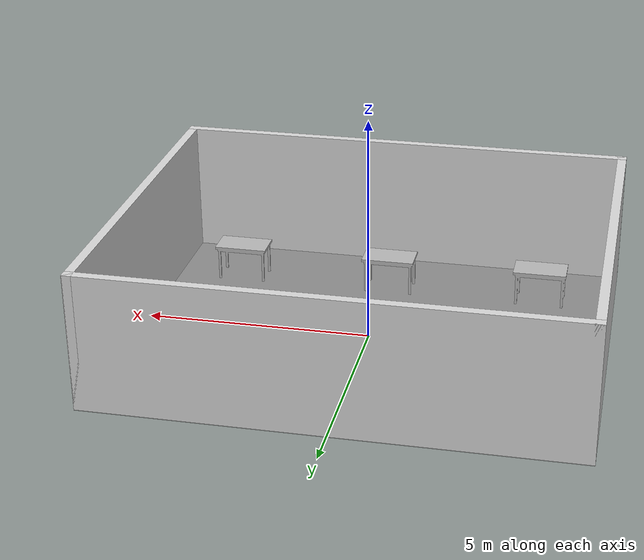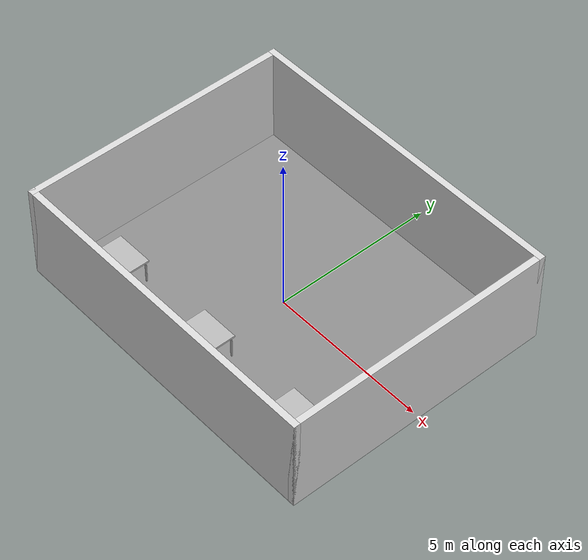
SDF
<sdf version="1.11">
 <world name="bag_sorting_single">
  <physics name="4ms" type="Bullet">
   <max_step_size>0.004</max_step_size>
   <real_time_factor>1.0</real_time_factor>
   <real_time_update_rate>250</real_time_update_rate>
  </physics>
  <plugin filename="gz-sim-physics-system" name="gz::sim::systems::Physics"/>
  <plugin filename="gz-sim-user-commands-system" name="gz::sim::systems::UserCommands"/>
  <plugin filename="gz-sim-scene-broadcaster-system" name="gz::sim::systems::SceneBroadcaster"/>
  <plugin filename="gz-sim-contact-system" name="gz::sim::systems::Contact"/>
  <plugin filename="gz-sim-imu-system" name="gz::sim::systems::Imu"/>
  <plugin filename="gz-sim-sensors-system" name="gz::sim::systems::Sensors">
   <render_engine>ogre2</render_engine>
  </plugin>
  <model name="floor">
   <static>true</static>
   <link name="link">
    <collision name="collision"><geometry><plane><normal>0 0 1</normal></plane></geometry></collision>
    <visual name="visual">
     <geometry><plane><normal>0 0 1</normal><size>10.4 8.4</size></plane></geometry>
     <material>
      <ambient>0.55 0.55 0.55 1</ambient>
      <diffuse>0.55 0.55 0.55 1</diffuse>
      <specular>0.1 0.1 0.1 1</specular>
     </material>
    </visual>
   </link>
  </model>
  <model name="wall_north">
   <static>true</static>
   <pose>0 4.1 1.5 0 0 0</pose>
   <link name="link">
    <collision name="collision"><geometry><box><size>10.4 0.2 3.0</size></box></geometry></collision>
    <visual name="visual">
     <geometry><box><size>10.4 0.2 3.0</size></box></geometry>
     <material><ambient>0.85 0.85 0.85 1</ambient><diffuse>0.85 0.85 0.85 1</diffuse></material>
    </visual>
   </link>
  </model>
  <model name="wall_south">
   <static>true</static>
   <pose>0 -4.1 1.5 0 0 0</pose>
   <link name="link">
    <collision name="collision"><geometry><box><size>10.4 0.2 3.0</size></box></geometry></collision>
    <visual name="visual">
     <geometry><box><size>10.4 0.2 3.0</size></box></geometry>
     <material><ambient>0.85 0.85 0.85 1</ambient><diffuse>0.85 0.85 0.85 1</diffuse></material>
    </visual>
   </link>
  </model>
  <model name="wall_east">
   <static>true</static>
   <pose>5.1 0 1.5 0 0 0</pose>
   <link name="link">
    <collision name="collision"><geometry><box><size>0.2 8.4 3.0</size></box></geometry></collision>
    <visual name="visual">
     <geometry><box><size>0.2 8.4 3.0</size></box></geometry>
     <material><ambient>0.85 0.85 0.85 1</ambient><diffuse>0.85 0.85 0.85 1</diffuse></material>
    </visual>
   </link>
  </model>
  <model name="wall_west">
   <static>true</static>
   <pose>-5.1 0 1.5 0 0 0</pose>
   <link name="link">
    <collision name="collision"><geometry><box><size>0.2 8.4 3.0</size></box></geometry></collision>
    <visual name="visual">
     <geometry><box><size>0.2 8.4 3.0</size></box></geometry>
     <material><ambient>0.85 0.85 0.85 1</ambient><diffuse>0.85 0.85 0.85 1</diffuse></material>
    </visual>
   </link>
  </model>
  <model name="table_1">
   <static>true</static>
   <pose>-3.5 -2.5 0.20 0 0 1.5708</pose>
   <link name="link">
    <visual name="visual">
     <geometry><mesh><uri>model://table/table.dae</uri><scale>0.6 0.6 1</scale></mesh></geometry>
    </visual>
    <collision name="collision">
     <geometry><mesh><uri>model://table/table.dae</uri><scale>0.6 0.6 1</scale></mesh></geometry>
    </collision>
   </link>
  </model>
  <model name="table_2">
   <static>true</static>
   <pose>3.5 -2.5 0.20 0 0 1.5708</pose>
   <link name="link">
    <visual name="visual">
     <geometry><mesh><uri>model://table/table.dae</uri><scale>0.6 0.6 1</scale></mesh></geometry>
    </visual>
    <collision name="collision">
     <geometry><mesh><uri>model://table/table.dae</uri><scale>0.6 0.6 1</scale></mesh></geometry>
    </collision>
   </link>
  </model>
  <model name="table_3">
   <static>true</static>
   <pose>0 -2.5 0.20 0 0 1.5708</pose>
   <link name="link">
    <visual name="visual">
     <geometry><mesh><uri>model://table/table.dae</uri><scale>0.6 0.6 1</scale></mesh></geometry>
    </visual>
    <collision name="collision">
     <geometry><mesh><uri>model://table/table.dae</uri><scale>0.6 0.6 1</scale></mesh></geometry>
    </collision>
   </link>
  </model>
  <light name="sun" type="directional">
   <pose>0 0 10 0 0 0</pose>
   <diffuse>0.8 0.8 0.8 1</diffuse>
   <specular>0.2 0.2 0.2 1</specular>
   <direction>-0.3 0.3 -0.9</direction>
  </light>
  <light name="light_pallets" type="point">
   <pose>0 2.5 6 0 0 0</pose>
   <diffuse>0.5 0.5 0.5 1</diffuse>
   <specular>0.2 0.2 0.2 1</specular>
   <attenuation>
    <range>15</range>
    <constant>0.3</constant>
    <linear>0.01</linear>
    <quadratic>0.001</quadratic>
   </attenuation>
   <cast_shadows>false</cast_shadows>
  </light>
  <light name="light_tables" type="point">
   <pose>0 -2.5 6 0 0 0</pose>
   <diffuse>0.5 0.5 0.5 1</diffuse>
   <specular>0.2 0.2 0.2 1</specular>
   <attenuation>
    <range>15</range>
    <constant>0.3</constant>
    <linear>0.01</linear>
    <quadratic>0.001</quadratic>
   </attenuation>
   <cast_shadows>false</cast_shadows>
  </light>
 </world>
</sdf>
